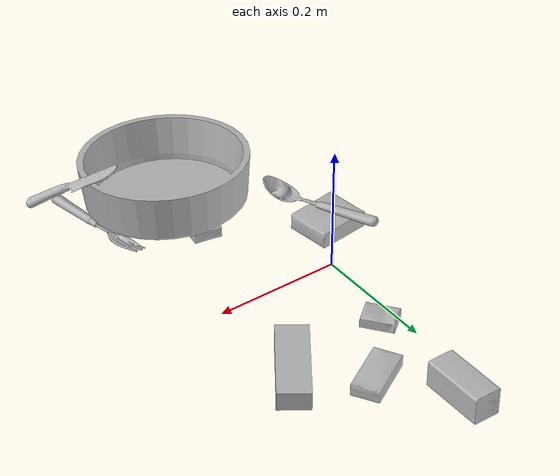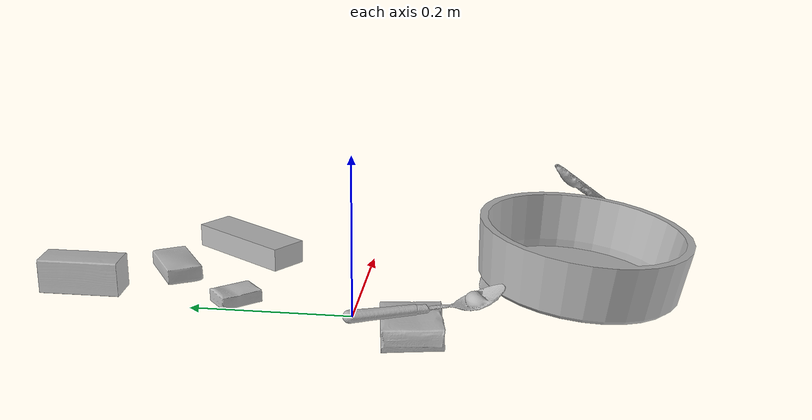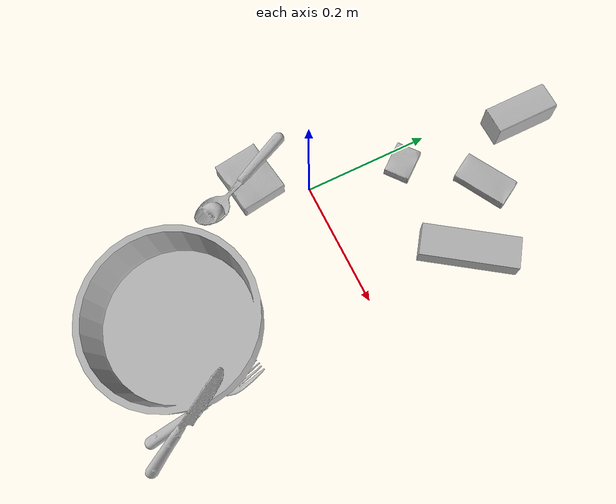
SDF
<sdf version="1.4">
  <world name="default">
    <light name="light1" type="point">
      <pose>0 0 1 0 0 0</pose>
      <diffuse>3 3 3 1</diffuse>
      <specular>3 3 3 1</specular>
    </light>
    <light name="light2" type="point">
      <pose>0 0.5 2 0 0 0</pose>
      <diffuse>1 1 1 1</diffuse>
      <specular>1 1 1 1</specular>
    </light>
    <light name="light3" type="point">
      <pose>0 0.5 2 0 0 0</pose>
      <diffuse>3 3 3 1</diffuse>
      <specular>3 3 3 1</specular>
    </light>
    <scene>
      <ambient>0.7 0.7 0.7</ambient>
    </scene>
    <model name="box11">
      <link name="link_box11">
        <collision name="default">
          <geometry>
            <mesh>
              <uri>model://jenga/collision_meshes/collision.obj</uri>
              <scale>1.0 1.0 1.0</scale>
            </mesh>
          </geometry>
          <surface>
            <friction>
              <ode>
                <mu>0.5</mu>
                <mu2>0.5</mu2>
              </ode>
            </friction>
          <contact>
        <ode>
            <max_vel>0</max_vel>
            <min_depth>0.0001</min_depth>
            <kp>1e8</kp>
        </ode>
    </contact></surface>
        </collision>
        <visual name="default">
          <geometry>
            <mesh>
              <uri>model://jenga/visual_meshes/visual.dae</uri>
              <scale>1.0 1.0 1.0</scale>
            </mesh>
          </geometry>
        </visual>
        <inertial>
          <mass>0.3186844289302826</mass>
          <pose>-2.502855807051674e-07 -0.0001025000965455547 -4.0923401684267446e-05 0.0 -7.34215461761844e-07 0.0</pose>
          <inertia>
            <ixx>8.818771e-05</ixx>
            <iyy>0.0005975576</iyy>
            <izz>0.00063794345</izz>
            <ixy>0</ixy>
            <ixz>0</ixz>
            <iyz>0</iyz>
          </inertia>
        </inertial>
      </link>
      <pose>0.1985885202884674 0.16928063333034515 0.014999995939433575 2.4276145150293395e-08 1.3050658951404735e-08 0.9528697257767114</pose>
    </model>
    <model name="box12">
      <link name="link_box12">
        <collision name="default">
          <geometry>
            <mesh>
              <uri>model://pudding_box/collision_meshes/collision.obj</uri>
              <scale>0.5 0.5 0.5</scale>
            </mesh>
          </geometry>
          <surface>
            <friction>
              <ode>
                <mu>0.5</mu>
                <mu2>0.5</mu2>
              </ode>
            </friction>
          <contact>
        <ode>
            <max_vel>0</max_vel>
            <min_depth>0.0001</min_depth>
            <kp>1e8</kp>
        </ode>
    </contact></surface>
        </collision>
        <visual name="default">
          <geometry>
            <mesh>
              <uri>model://pudding_box/visual_meshes/visual.dae</uri>
              <scale>0.5 0.5 0.5</scale>
            </mesh>
          </geometry>
        </visual>
        <inertial>
          <mass>0.030172348022460938</mass>
          <pose>0.00024474109522998333 0.000403394311433658 -0.00025944141088984907 0.005213102256408686 -0.006603800110353006 0.02007982142872578</pose>
          <inertia>
            <ixx>8.527073e-06</ixx>
            <iyy>5.7370744e-06</iyy>
            <izz>1.259245e-05</izz>
            <ixy>0</ixy>
            <ixz>0</ixz>
            <iyz>0</iyz>
          </inertia>
        </inertial>
      </link>
      <pose>0.11189830303192139 -0.17780543863773346 0.01140524260699749 -0.07889429498119255 -0.0068138263524705174 2.9352439222912428</pose>
    </model>
    <model name="box13">
      <link name="link_box13">
        <collision name="default">
          <geometry>
            <mesh>
              <uri>model://sugar_box/collision_meshes/collision.obj</uri>
              <scale>0.5 0.5 0.5</scale>
            </mesh>
          </geometry>
          <surface>
            <friction>
              <ode>
                <mu>0.5</mu>
                <mu2>0.5</mu2>
              </ode>
            </friction>
          <contact>
        <ode>
            <max_vel>0</max_vel>
            <min_depth>0.0001</min_depth>
            <kp>1e8</kp>
        </ode>
    </contact></surface>
        </collision>
        <visual name="default">
          <geometry>
            <mesh>
              <uri>model://sugar_box/visual_meshes/visual.dae</uri>
              <scale>0.5 0.5 0.5</scale>
            </mesh>
          </geometry>
        </visual>
        <inertial>
          <mass>0.12330043315887451</mass>
          <pose>0.0005171863595023751 1.924554817378521e-05 -0.0001818240125430748 -0.0004046263878582698 0.0010506634058618082 0.0026153787888998363</pose>
          <inertia>
            <ixx>2.5683388e-05</ixx>
            <iyy>8.301401e-05</iyy>
            <izz>9.937768e-05</izz>
            <ixy>0</ixy>
            <ixz>0</ixz>
            <iyz>0</iyz>
          </inertia>
        </inertial>
      </link>
      <pose>0.11238399147987366 0.24800939857959747 0.011399313807487488 0.0007754250115526272 -0.023432794882258086 -2.6215135875019455</pose>
    </model>
    <model name="box21">
      <link name="link_box21">
        <collision name="default">
          <geometry>
            <mesh>
              <uri>model://wood_block/collision_meshes/collision.obj</uri>
              <scale>0.5 0.5 0.5</scale>
            </mesh>
          </geometry>
          <surface>
            <friction>
              <ode>
                <mu>0.5</mu>
                <mu2>0.5</mu2>
              </ode>
            </friction>
          <contact>
        <ode>
            <max_vel>0</max_vel>
            <min_depth>0.0001</min_depth>
            <kp>1e8</kp>
        </ode>
    </contact></surface>
        </collision>
        <visual name="default">
          <geometry>
            <mesh>
              <uri>model://wood_block/visual_meshes/visual.dae</uri>
              <scale>0.5 0.5 0.5</scale>
            </mesh>
          </geometry>
        </visual>
        <inertial>
          <mass>0.22575385868549347</mass>
          <pose>-2.9066577553749084e-06 -0.00028540470520965755 0.00013204291462898254 -0.05220771918194674 -0.005192696213783058 -0.006861377697513623</pose>
          <inertia>
            <ixx>7.552322e-05</ixx>
            <iyy>0.00023857782</iyy>
            <izz>0.00023768542</izz>
            <ixy>0</ixy>
            <ixz>0</ixz>
            <iyz>0</iyz>
          </inertia>
        </inertial>
      </link>
      <pose>0.04009803384542465 0.3483377993106842 0.022629264742136 -0.005208544877142618 0.005718751550280215 1.5737183510816515</pose>
    </model>
    <model name="box22">
      <link name="link_box22">
        <collision name="default">
          <geometry>
            <mesh>
              <uri>model://cracker_box/collision_meshes/collision.obj</uri>
              <scale>0.25 0.25 0.25</scale>
            </mesh>
          </geometry>
          <surface>
            <friction>
              <ode>
                <mu>0.5</mu>
                <mu2>0.5</mu2>
              </ode>
            </friction>
          <contact>
        <ode>
            <max_vel>0</max_vel>
            <min_depth>0.0001</min_depth>
            <kp>1e8</kp>
        </ode>
    </contact></surface>
        </collision>
        <visual name="default">
          <geometry>
            <mesh>
              <uri>model://cracker_box/visual_meshes/visual.dae</uri>
              <scale>0.25 0.25 0.25</scale>
            </mesh>
          </geometry>
        </visual>
        <inertial>
          <mass>0.02141544781625271</mass>
          <pose>0.0002366038243053481 6.358561950037256e-05 -0.00042573839891701937 -0.000316207804917531 -0.011106489600095467 0.0025467954686493135</pose>
          <inertia>
            <ixx>3.4044588e-06</ixx>
            <iyy>5.62143e-06</iyy>
            <izz>8.022297e-06</izz>
            <ixy>0</ixy>
            <ixz>0</ixz>
            <iyz>0</iyz>
          </inertia>
        </inertial>
      </link>
      <pose>0.02714051865041256 0.14885275065898895 0.009120449423789978 -0.011787946364466605 -0.007367172560794005 -0.9012262425734089</pose>
    </model>
    <model name="box23">
      <link name="link_box23">
        <collision name="default">
          <geometry>
            <mesh>
              <uri>model://gelatin_box/collision_meshes/collision.obj</uri>
              <scale>1.0 1.0 1.0</scale>
            </mesh>
          </geometry>
          <surface>
            <friction>
              <ode>
                <mu>0.5</mu>
                <mu2>0.5</mu2>
              </ode>
            </friction>
          <contact>
        <ode>
            <max_vel>0</max_vel>
            <min_depth>0.0001</min_depth>
            <kp>1e8</kp>
        </ode>
    </contact></surface>
        </collision>
        <visual name="default">
          <geometry>
            <mesh>
              <uri>model://gelatin_box/visual_meshes/visual.dae</uri>
              <scale>1.0 1.0 1.0</scale>
            </mesh>
          </geometry>
        </visual>
        <inertial>
          <mass>0.2518538236618042</mass>
          <pose>0.00043196187471039593 0.00011156871914863586 -0.0003640321083366871 -0.001050372077086074 -0.00475581729336075 0.01644055760821351</pose>
          <inertia>
            <ixx>0.00017778824</ixx>
            <iyy>0.00012699323</iyy>
            <izz>0.00027063338</izz>
            <ixy>0</ixy>
            <ixz>0</ixz>
            <iyz>0</iyz>
          </inertia>
        </inertial>
      </link>
      <pose>-0.05143577605485916 -0.07692093402147293 0.015168293379247189 0.0055971284232720995 -0.007303710998438505 -1.4400433823027552</pose>
    </model>
    <model name="plate1">
      <link name="link_plate1">
        <collision name="default">
          <geometry>
            <mesh>
              <uri>model://pan_tefal/collision_meshes/collision.obj</uri>
              <scale>1.0 1.0 1.0</scale>
            </mesh>
          </geometry>
          <surface>
            <friction>
              <ode>
                <mu>0.5</mu>
                <mu2>0.5</mu2>
              </ode>
            </friction>
          <contact>
        <ode>
            <max_vel>0</max_vel>
            <min_depth>0.0001</min_depth>
            <kp>1e8</kp>
        </ode>
    </contact></surface>
        </collision>
        <visual name="default">
          <geometry>
            <mesh>
              <uri>model://pan_tefal/visual_meshes/visual.dae</uri>
              <scale>1.0 1.0 1.0</scale>
            </mesh>
          </geometry>
        </visual>
        <inertial>
          <mass>1.2783581018447876</mass>
          <pose>-0.0001800234749680385 3.279297015978955e-05 -0.008514934219419956 0.0008190282028794127 -0.0003301398069692291 -0.33185125702417473</pose>
          <inertia>
            <ixx>0.0088244425</ixx>
            <iyy>0.008881334</iyy>
            <izz>0.016244099</izz>
            <ixy>0</ixy>
            <ixz>0</ixz>
            <iyz>0</iyz>
          </inertia>
        </inertial>
      </link>
      <pose>0.11390267312526703 -0.27123165130615234 0.049572382122278214 -0.06500156461919251 0.08475710546785122 -2.2785164951754386</pose>
    </model>
    <model name="silverware1">
      <link name="link_silverware1">
        <collision name="default">
          <geometry>
            <mesh>
              <uri>model://knife/collision_meshes/collision.obj</uri>
              <scale>1.0 1.0 1.0</scale>
            </mesh>
          </geometry>
          <surface>
            <friction>
              <ode>
                <mu>0.5</mu>
                <mu2>0.5</mu2>
              </ode>
            </friction>
          <contact>
        <ode>
            <max_vel>0</max_vel>
            <min_depth>0.0001</min_depth>
            <kp>1e8</kp>
        </ode>
    </contact></surface>
        </collision>
        <visual name="default">
          <geometry>
            <mesh>
              <uri>model://knife/visual_meshes/visual.dae</uri>
              <scale>1.0 1.0 1.0</scale>
            </mesh>
          </geometry>
        </visual>
        <inertial>
          <mass>0.028752580285072327</mass>
          <pose>-0.023785240948200226 0.0015275123296305537 5.0620223191799596e-05 0.07306965696526056 0.017248417457013686 -0.00740982691157592</pose>
          <inertia>
            <ixx>8.161146e-07</ixx>
            <iyy>0.000110462766</iyy>
            <izz>0.00011072555</izz>
            <ixy>0</ixy>
            <ixz>0</ixz>
            <iyz>0</iyz>
          </inertia>
        </inertial>
      </link>
      <pose>0.2561183571815491 -0.31190529465675354 0.06771457195281982 0.6106459869425103 -0.6535726192337395 1.9521469155931688</pose>
    </model>
    <model name="silverware2">
      <link name="link_silverware2">
        <collision name="default">
          <geometry>
            <mesh>
              <uri>model://spoon/collision_meshes/collision.obj</uri>
              <scale>1.0 1.0 1.0</scale>
            </mesh>
          </geometry>
          <surface>
            <friction>
              <ode>
                <mu>0.5</mu>
                <mu2>0.5</mu2>
              </ode>
            </friction>
          <contact>
        <ode>
            <max_vel>0</max_vel>
            <min_depth>0.0001</min_depth>
            <kp>1e8</kp>
        </ode>
    </contact></surface>
        </collision>
        <visual name="default">
          <geometry>
            <mesh>
              <uri>model://spoon/visual_meshes/visual.dae</uri>
              <scale>1.0 1.0 1.0</scale>
            </mesh>
          </geometry>
        </visual>
        <inertial>
          <mass>0.03275385871529579</mass>
          <pose>-0.005526320543140173 -0.0016034176805987954 -0.0007271653157658875 0.03521620701241808 -0.03906583474323888 0.006150609342160928</pose>
          <inertia>
            <ixx>1.8218228e-06</ixx>
            <iyy>0.00012462735</iyy>
            <izz>0.0001255258</izz>
            <ixy>0</ixy>
            <ixz>0</ixz>
            <iyz>0</iyz>
          </inertia>
        </inertial>
      </link>
      <pose>-0.04476535692811012 -0.09188798069953918 0.03823203966021538 0.022054363481324626 0.011079387007615217 -1.1357797135414416</pose>
    </model>
    <model name="silverware3">
      <link name="link_silverware3">
        <collision name="default">
          <geometry>
            <mesh>
              <uri>model://fork/collision_meshes/collision.obj</uri>
              <scale>1.0 1.0 1.0</scale>
            </mesh>
          </geometry>
          <surface>
            <friction>
              <ode>
                <mu>0.5</mu>
                <mu2>0.5</mu2>
              </ode>
            </friction>
          <contact>
        <ode>
            <max_vel>0</max_vel>
            <min_depth>0.0001</min_depth>
            <kp>1e8</kp>
        </ode>
    </contact></surface>
        </collision>
        <visual name="default">
          <geometry>
            <mesh>
              <uri>model://fork/visual_meshes/visual.dae</uri>
              <scale>1.0 1.0 1.0</scale>
            </mesh>
          </geometry>
        </visual>
        <inertial>
          <mass>0.015051598660647869</mass>
          <pose>-0.029570037499070168 0.00046588244731538 0.0003218861238565296 -0.013550825752082697 -0.010977832944741694 0.014453903400543814</pose>
          <inertia>
            <ixx>5.2764364e-07</ixx>
            <iyy>3.9295395e-05</iyy>
            <izz>3.953141e-05</izz>
            <ixy>0</ixy>
            <ixz>0</ixz>
            <iyz>0</iyz>
          </inertia>
        </inertial>
      </link>
      <pose>0.23371143639087677 -0.2823086380958557 0.005720927380025387 -0.18336661106826196 0.024567152290620137 1.727202564543488</pose>
    </model>
  <physics type="ode">
      <max_contacts>50</max_contacts>
      <ode>
        <solver>
          <type>quick</type>
          <iters>75</iters>
        </solver>
        <constraints>
          <contact_max_correcting_vel>0</contact_max_correcting_vel>
          <contact_surface_layer>0</contact_surface_layer>
        </constraints>
      </ode>
    </physics></world>
</sdf>
